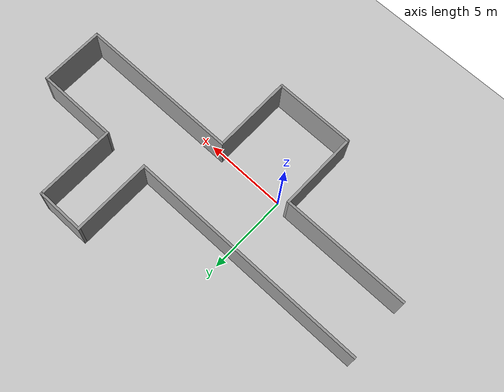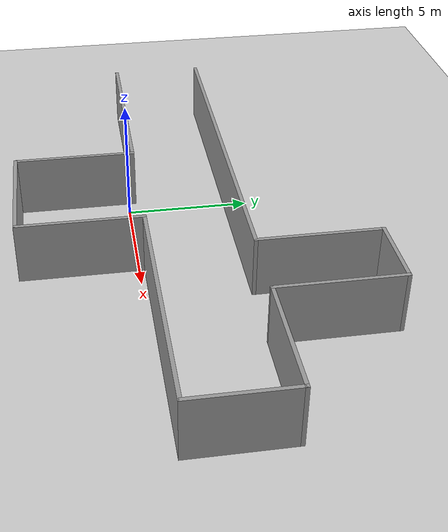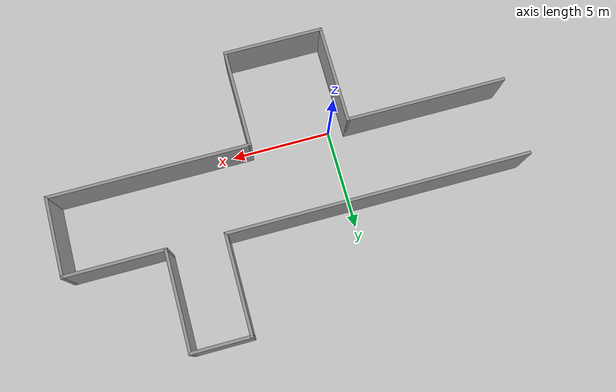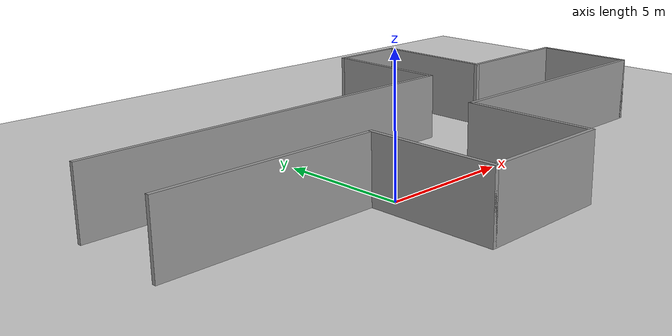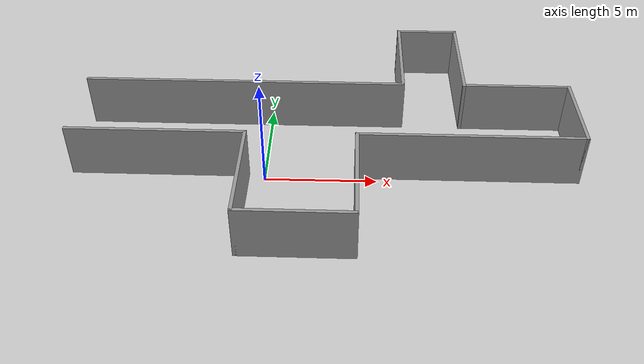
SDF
<sdf version="1.7">
 <world name="default">
  <light name="sun" type="directional">
   <pose>0 0 10 0 -0 0</pose>
   <diffuse>0.8 0.8 0.8 1</diffuse>
   <specular>0.2 0.2 0.2 1</specular>
   <attenuation>
    <range>1000</range>
    <constant>0.9</constant>
    <linear>0.01</linear>
    <quadratic>0.001</quadratic>
   </attenuation>
   <direction>-0.5 0.1 -0.9</direction>
   <spot><inner_angle>0</inner_angle><outer_angle>0</outer_angle><falloff>0</falloff></spot>
  </light>
  <model name="ground_plane">
   <static>1</static>
   <link name="link">
    <collision name="collision">
     <geometry><plane><normal>0 0 1</normal><size>100 100</size></plane></geometry>
     <surface>
      <contact><collide_bitmask>65535</collide_bitmask></contact>
      <friction><ode><mu>100</mu><mu2>50</mu2></ode></friction>
     </surface>
    </collision>
    <visual name="visual">
     <cast_shadows>0</cast_shadows>
     <geometry><plane><normal>0 0 1</normal><size>100 100</size></plane></geometry>
     <material>
      <script><uri>file://media/materials/scripts/gazebo.material</uri><name>Gazebo/Grey</name></script>
     </material>
    </visual>
   </link>
  </model>
  <gravity>0 0 -9.8</gravity>
  <magnetic_field>6e-06 2.3e-05 -4.2e-05</magnetic_field>
  <atmosphere type="adiabatic"/>
  <physics type="ode">
   <max_step_size>0.001</max_step_size>
   <real_time_factor>1</real_time_factor>
   <real_time_update_rate>1000</real_time_update_rate>
  </physics>
  <scene><ambient>0.4 0.4 0.4 1</ambient><background>0.7 0.7 0.7 1</background><shadows>1</shadows></scene>
  <spherical_coordinates>
   <surface_model>EARTH_WGS84</surface_model>
   <latitude_deg>0</latitude_deg>
   <longitude_deg>0</longitude_deg>
   <elevation>0</elevation>
   <heading_deg>0</heading_deg>
  </spherical_coordinates>
  <model name="wall">
   <pose>2.64731 2.1968 0 0 -0 0</pose>
   <link name="Wall_10">
    <collision name="Wall_10_Collision">
     <geometry><box><size>4 0.15 2.5</size></box></geometry>
     <pose>0 0 1.25 0 -0 0</pose>
    </collision>
    <visual name="Wall_10_Visual">
     <pose>0 0 1.25 0 -0 0</pose>
     <geometry><box><size>4 0.15 2.5</size></box></geometry>
     <material>
      <script><uri>file://media/materials/scripts/gazebo.material</uri><name>Gazebo/Grey</name></script>
      <ambient>1 1 1 1</ambient>
     </material>
     <meta><layer>0</layer></meta>
    </visual>
    <pose>11.275 0 0 0 -0 1.5708</pose>
   </link>
   <link name="Wall_11">
    <collision name="Wall_11_Collision">
     <geometry><box><size>5 0.15 2.5</size></box></geometry>
     <pose>0 0 1.25 0 -0 0</pose>
    </collision>
    <visual name="Wall_11_Visual">
     <pose>0 0 1.25 0 -0 0</pose>
     <geometry><box><size>5 0.15 2.5</size></box></geometry>
     <material>
      <script><uri>file://media/materials/scripts/gazebo.material</uri><name>Gazebo/Grey</name></script>
      <ambient>1 1 1 1</ambient>
     </material>
     <meta><layer>0</layer></meta>
    </visual>
    <pose>8.85 1.925 0 0 -0 3.14159</pose>
   </link>
   <link name="Wall_12">
    <collision name="Wall_12_Collision">
     <geometry><box><size>5 0.15 2.5</size></box></geometry>
     <pose>0 0 1.25 0 -0 0</pose>
    </collision>
    <visual name="Wall_12_Visual">
     <pose>0 0 1.25 0 -0 0</pose>
     <geometry><box><size>5 0.15 2.5</size></box></geometry>
     <material>
      <script><uri>file://media/materials/scripts/gazebo.material</uri><name>Gazebo/Grey</name></script>
      <ambient>1 1 1 1</ambient>
     </material>
     <meta><layer>0</layer></meta>
    </visual>
    <pose>6.425 4.35 0 0 -0 1.5708</pose>
   </link>
   <link name="Wall_13">
    <collision name="Wall_13_Collision">
     <geometry><box><size>3 0.15 2.5</size></box></geometry>
     <pose>0 0 1.25 0 -0 0</pose>
    </collision>
    <visual name="Wall_13_Visual">
     <pose>0 0 1.25 0 -0 0</pose>
     <geometry><box><size>3 0.15 2.5</size></box></geometry>
     <material>
      <script><uri>file://media/materials/scripts/gazebo.material</uri><name>Gazebo/Grey</name></script>
      <ambient>1 1 1 1</ambient>
     </material>
     <meta><layer>0</layer></meta>
    </visual>
    <pose>5 6.775 0 0 -0 3.14159</pose>
   </link>
   <link name="Wall_14">
    <collision name="Wall_14_Collision">
     <geometry><box><size>5 0.15 2.5</size></box></geometry>
     <pose>0 0 1.25 0 -0 0</pose>
    </collision>
    <visual name="Wall_14_Visual">
     <pose>0 0 1.25 0 -0 0</pose>
     <geometry><box><size>5 0.15 2.5</size></box></geometry>
     <material>
      <script><uri>file://media/materials/scripts/gazebo.material</uri><name>Gazebo/Grey</name></script>
      <ambient>1 1 1 1</ambient>
     </material>
     <meta><layer>0</layer></meta>
    </visual>
    <pose>3.575 4.35 0 0 -0 -1.5708</pose>
   </link>
   <link name="Wall_15">
    <collision name="Wall_15_Collision">
     <geometry><box><size>15 0.15 2.5</size></box></geometry>
     <pose>0 0 1.25 0 -0 0</pose>
    </collision>
    <visual name="Wall_15_Visual">
     <pose>0 0 1.25 0 -0 0</pose>
     <geometry><box><size>15 0.15 2.5</size></box></geometry>
     <material>
      <script><uri>file://media/materials/scripts/gazebo.material</uri><name>Gazebo/Grey</name></script>
      <ambient>1 1 1 1</ambient>
     </material>
     <meta><layer>0</layer></meta>
    </visual>
    <pose>-3.85 1.925 0 0 -0 3.14159</pose>
   </link>
   <link name="Wall_5">
    <collision name="Wall_5_Collision">
     <geometry><box><size>8 0.15 2.5</size></box></geometry>
     <pose>0 0 1.25 0 -0 0</pose>
    </collision>
    <visual name="Wall_5_Visual">
     <pose>0 0 1.25 0 -0 0</pose>
     <geometry><box><size>8 0.15 2.5</size></box></geometry>
     <material>
      <script><uri>file://media/materials/scripts/gazebo.material</uri><name>Gazebo/Grey</name></script>
      <ambient>1 1 1 1</ambient>
     </material>
     <meta><layer>0</layer></meta>
    </visual>
    <pose>-7.35 -1.925 0 0 -0 0</pose>
   </link>
   <link name="Wall_6">
    <collision name="Wall_6_Collision">
     <geometry><box><size>5 0.15 2.5</size></box></geometry>
     <pose>0 0 1.25 0 -0 0</pose>
    </collision>
    <visual name="Wall_6_Visual">
     <pose>0 0 1.25 0 -0 0</pose>
     <geometry><box><size>5 0.15 2.5</size></box></geometry>
     <material>
      <script><uri>file://media/materials/scripts/gazebo.material</uri><name>Gazebo/Grey</name></script>
      <ambient>1 1 1 1</ambient>
     </material>
     <meta><layer>0</layer></meta>
    </visual>
    <pose>-3.425 -4.35 0 0 -0 -1.5708</pose>
   </link>
   <link name="Wall_7">
    <collision name="Wall_7_Collision">
     <geometry><box><size>5 0.15 2.5</size></box></geometry>
     <pose>0 0 1.25 0 -0 0</pose>
    </collision>
    <visual name="Wall_7_Visual">
     <pose>0 0 1.25 0 -0 0</pose>
     <geometry><box><size>5 0.15 2.5</size></box></geometry>
     <material>
      <script><uri>file://media/materials/scripts/gazebo.material</uri><name>Gazebo/Grey</name></script>
      <ambient>1 1 1 1</ambient>
     </material>
     <meta><layer>0</layer></meta>
    </visual>
    <pose>-1 -6.775 0 0 -0 0</pose>
   </link>
   <link name="Wall_8">
    <collision name="Wall_8_Collision">
     <geometry><box><size>5 0.15 2.5</size></box></geometry>
     <pose>0 0 1.25 0 -0 0</pose>
    </collision>
    <visual name="Wall_8_Visual">
     <pose>0 0 1.25 0 -0 0</pose>
     <geometry><box><size>5 0.15 2.5</size></box></geometry>
     <material>
      <script><uri>file://media/materials/scripts/gazebo.material</uri><name>Gazebo/Grey</name></script>
      <ambient>1 1 1 1</ambient>
     </material>
     <meta><layer>0</layer></meta>
    </visual>
    <pose>1.425 -4.35 0 0 -0 1.5708</pose>
   </link>
   <link name="Wall_9">
    <collision name="Wall_9_Collision">
     <geometry><box><size>10 0.15 2.5</size></box></geometry>
     <pose>0 0 1.25 0 -0 0</pose>
    </collision>
    <visual name="Wall_9_Visual">
     <pose>0 0 1.25 0 -0 0</pose>
     <geometry><box><size>10 0.15 2.5</size></box></geometry>
     <material>
      <script><uri>file://media/materials/scripts/gazebo.material</uri><name>Gazebo/Grey</name></script>
      <ambient>1 1 1 1</ambient>
     </material>
     <meta><layer>0</layer></meta>
    </visual>
    <pose>6.35 -1.925 0 0 -0 0</pose>
   </link>
   <static>1</static>
  </model>
 </world>
</sdf>
